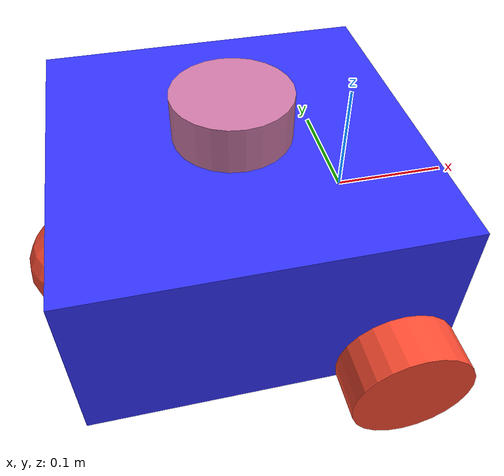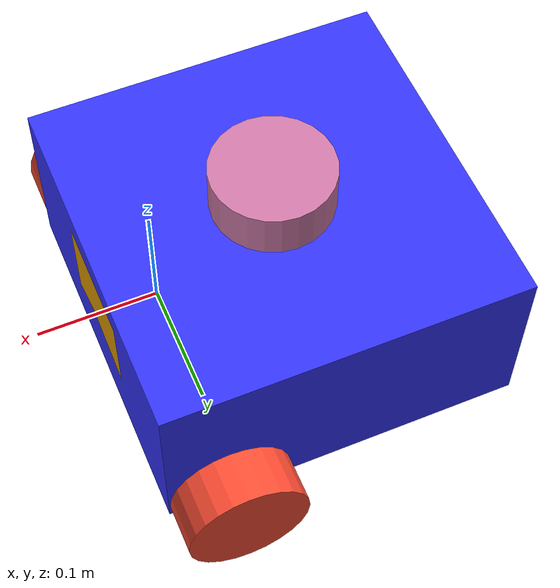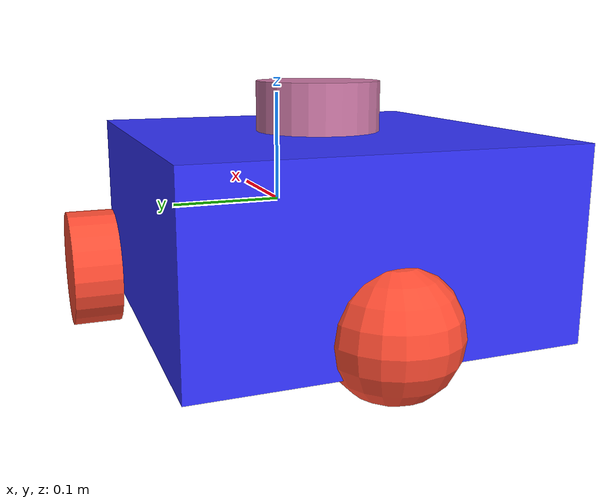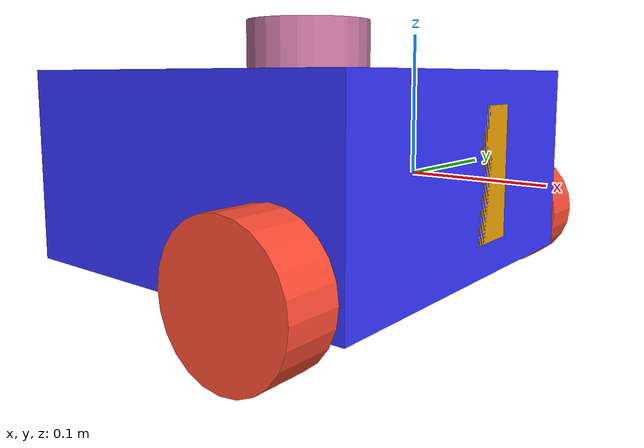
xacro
<?xml version="1.0"?>
<robot xmlns:xacro="http://www.ros.org/wiki/xacro"  name="robot">

    <!-- Example link -->
    <xacro:include filename = "robot_core.xacro"/>
    <xacro:include filename = "gazebo_control.xacro"/>
    <xacro:include filename = "lidar.xacro"/>
    <xacro:include filename = "ros2_control.xacro"/>

</robot>

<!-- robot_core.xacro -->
<robot xmlns:xacro="http://www.ros.org/wiki/xacro">
    <xacro:include filename="inertial_macros.xacro"/>

    <!-- Define PBR Materials -->
    <material name="blue">
        <color rgba="0.2 0.2 1 1"/>
        <pbr>
            <albedo>0.2 0.2 1 1</albedo>
            <roughness>0.5</roughness>
            <metalness>0.1</metalness>
        </pbr>
    </material>

    <material name="orange">
        <color rgba="1 0.3 0.2 1"/>
        <pbr>
            <albedo>1 0.3 0.2 1</albedo>
            <roughness>0.5</roughness>
            <metalness>0.2</metalness>
        </pbr>
    </material>

    <!-- BASE LINK -->
    <link name="base_link">
        <inertial>
            <origin xyz="0 0 0" rpy="0 0 0"/>
            <mass value="1"/>
            <inertia ixx="0.1" ixy="0" ixz="0" iyy="0.1" iyz="0" izz="0.1"/>
        </inertial>
        <visual>
            <geometry>
                <box size="0.1 0.1 0.1"/>
            </geometry>
        </visual>
        <collision>
            <geometry>
                <box size="0.1 0.1 0.1"/>
            </geometry>
        </collision>
    </link>

    <joint name="base_footprint_joint" type="fixed">
        <parent link="base_link"/>
        <child link="base_footprint"/>
        <origin xyz="0 0 0"/>
    </joint>

    <link name = "base_footprint">
    </link>

    <!-- CHASSIS -->
    <joint name="chassis_joint" type="fixed">
        <parent link="base_link"/>
        <child link="chassis"/>
        <origin xyz="-0.1 0 0"/>
    </joint>

    <link name="chassis">
        <visual>
            <geometry>
                <box size="0.3 0.3 0.15"/>
            </geometry>
            <material name="blue"/>
        </visual>
        <collision>
            <geometry>
                <box size="0.3 0.3 0.15"/>
            </geometry>
        </collision>
        <xacro:inertial_box mass = "0.5" x="0.3" y = "0.3" z = "0.15">
            <origin xyz="0.15 0 0.075" rpy="0 0 0"/>
        </xacro:inertial_box>
    </link>

    <!-- LEFT WHEEL -->
    <joint name="left_wheel_joint" type="continuous">
        <parent link="base_link"/>
        <child link="left_wheel"/>
        <origin xyz="0 0.175 -0.05" rpy="-${pi/2} 0 0"/>
        <axis xyz="0 0 1"/>
    </joint>

    <link name="left_wheel">
        <visual>
            <geometry>
                <cylinder radius="0.05" length="0.04"/>
            </geometry>
            <material name="orange"/>
        </visual>
        <collision>
            <geometry>
                <cylinder radius="0.05" length="0.04"/>
            </geometry>
        </collision>
        <xacro:inertial_cylinder mass="0.1" radius="0.05" height="0.04">
            <origin xyz="0 0 0" rpy="0 0 0"/>
        </xacro:inertial_cylinder>
    </link>

    <!-- RIGHT WHEEL -->
    <joint name="right_wheel_joint" type="continuous">
        <parent link="base_link"/>
        <child link="right_wheel"/>
        <origin xyz="0 -0.175 -0.05" rpy="${pi/2} 0 0"/>
        <axis xyz="0 0 -1"/>
    </joint>

    <link name="right_wheel">
        <visual>
            <geometry>
                <cylinder radius="0.05" length="0.04"/>
            </geometry>
            <material name="orange"/>
        </visual>
        <collision>
            <geometry>
                <cylinder radius="0.05" length="0.04"/>
            </geometry>
        </collision>
        <xacro:inertial_cylinder mass="0.1" radius="0.05" height="0.04">
            <origin xyz="0 0 0" rpy="0 0 0"/>
        </xacro:inertial_cylinder>
    </link>

    <!-- CASTER WHEEL -->
    <joint name="caster_wheel_joint" type="fixed">
        <parent link="chassis"/>
        <child link="caster_wheel"/>
        <origin xyz="-0.14 0 -0.05"/>
    </joint>

    <link name="caster_wheel">
        <visual>
            <geometry>
                <sphere radius="0.05"/>
            </geometry>
            <material name="orange"/>
        </visual>
        <collision>
            <geometry>
                <sphere radius="0.05"/>
            </geometry>
        </collision>
        <xacro:inertial_sphere mass="0.1" radius="0.05">
            <origin xyz="0 0 0" rpy="0 0 0"/>
        </xacro:inertial_sphere>
    </link>

</robot>

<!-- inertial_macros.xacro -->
<robot xmlns:xacro="http://www.ros.org/wiki/xacro">

    <xacro:macro name="inertial_sphere" params="mass radius *origin">
        <inertial>
            <mass value="${mass}"/>
            <inertia ixx = "${(2/5)*mass*(radius*radius)}" ixy ="0.0" ixz = "0.0"
                iyy = "${(2/5)*mass*(radius*radius)}" iyz = "0.0"
                izz = "${(2/5)*mass*(radius*radius)}"/>

        </inertial>

    </xacro:macro>

    <xacro:macro name = "inertial_box" params = "mass x y z *origin">
    <inertial>
        <mass value = "${mass}"/>
        <inertia ixx ="${(1/12)*mass * (y*y + z*z)}" ixy ="0.0" ixz = "0.0"
                iyy = "${(1/12)*mass * (x*x + z*z)}" iyz = "0.0"
                izz = "${(1/12)*mass * (x*x + y*y)}"/>
    </inertial>
    </xacro:macro>

    <xacro:macro name = "inertial_cylinder" params = "mass radius height *origin">
        <inertial>
            <mass value="${mass}"/>
            <inertia ixx = "${(1/12)*mass*(3*radius*radius + height*height)}" ixy ="0.0" ixz = "0.0"
                iyy = "${(1/12)*mass*(3*radius*radius + height*height)}" iyz = "0.0"
                izz = "${(1/2)*mass*radius*radius}"/>
        </inertial>
    </xacro:macro>
</robot>

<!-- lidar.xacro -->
<robot xmlns:xacro="http://www.ros.org/wiki/xacro">
    <joint name = "laser_joint" type="fixed">

        <parent link= "base_link"/>
        <child link="laser_frame"/>
        <origin xyz="-0.1 0 0.09" rpy="0 0 0"/>
    </joint>

    <link name = "laser_frame">
        <visual>
            <geometry>
                <cylinder length="0.05" radius="0.05"/>
            </geometry>
        </visual>
        <collision>
            <geometry>
                <cylinder length="0.05" radius="0.05"/>
            </geometry>
        </collision>
    </link>

    <gazebo reference = "laser_frame">
        <sensor name = "laser" type = "gpu_lidar">
        <pose>0 0 0 0 0 0</pose>
            <visualize>false</visualize>
            <update_rate>10</update_rate>

            <lidar>
                <scan>
                    <horizontal>
                        <samples>360</samples>
                        <min_angle>-3.14</min_angle>
                        <max_angle>3.14</max_angle>
                    </horizontal>
                </scan>
                <range>
                    <min>0.3</min>
                    <max>12</max>
                </range>
            </lidar>
            <topic>scan</topic>
            <gz_frame_id>laser_frame</gz_frame_id>
        </sensor>
    </gazebo>
</robot>
